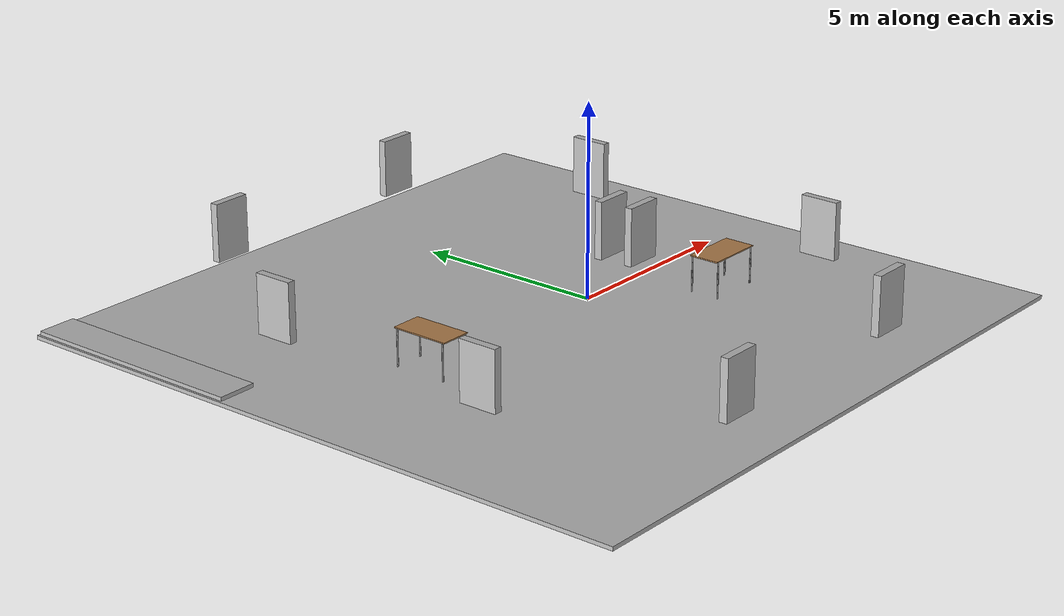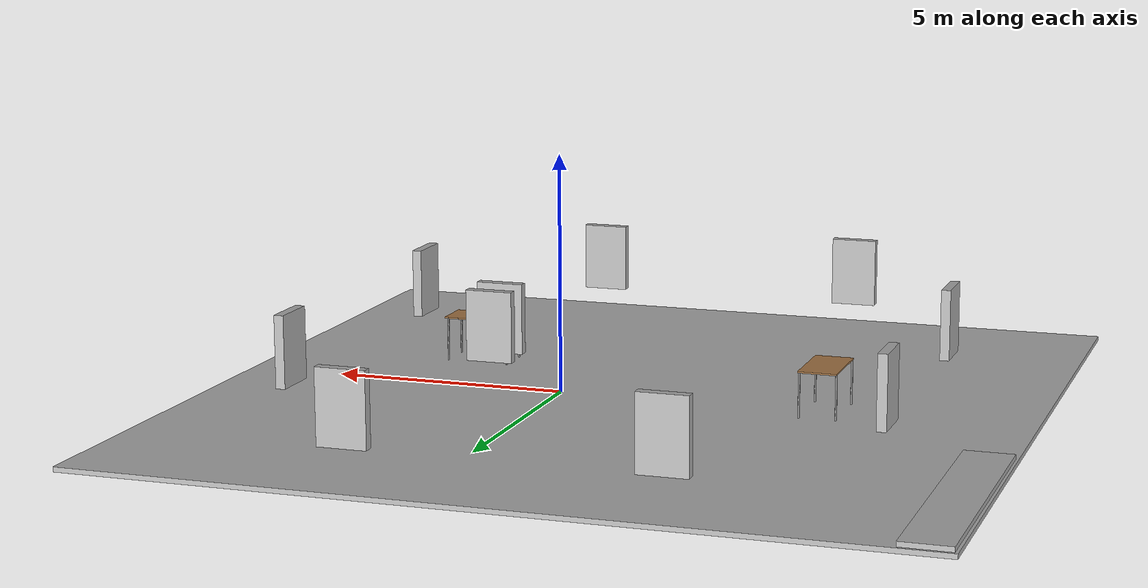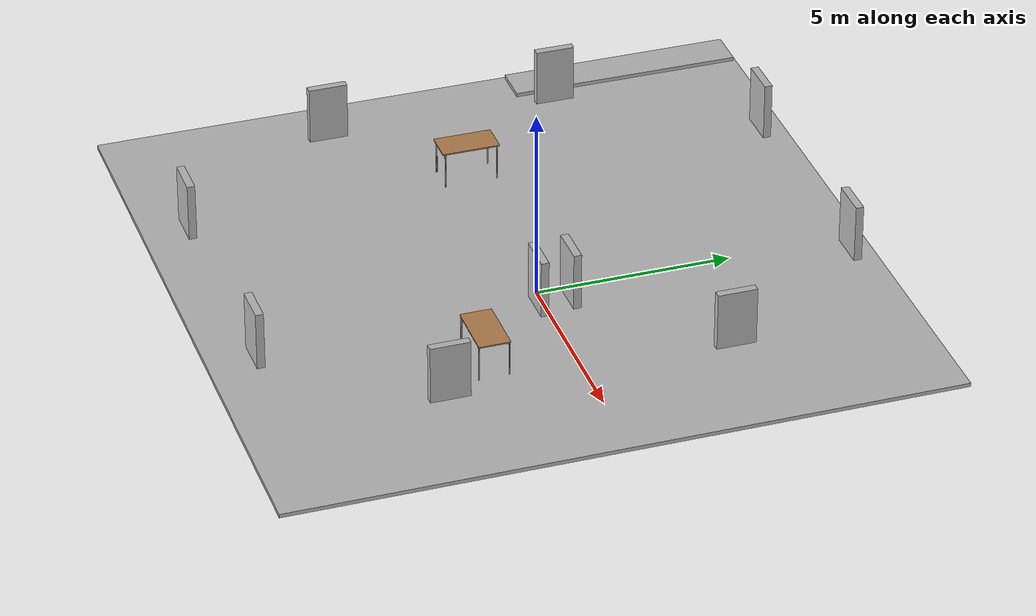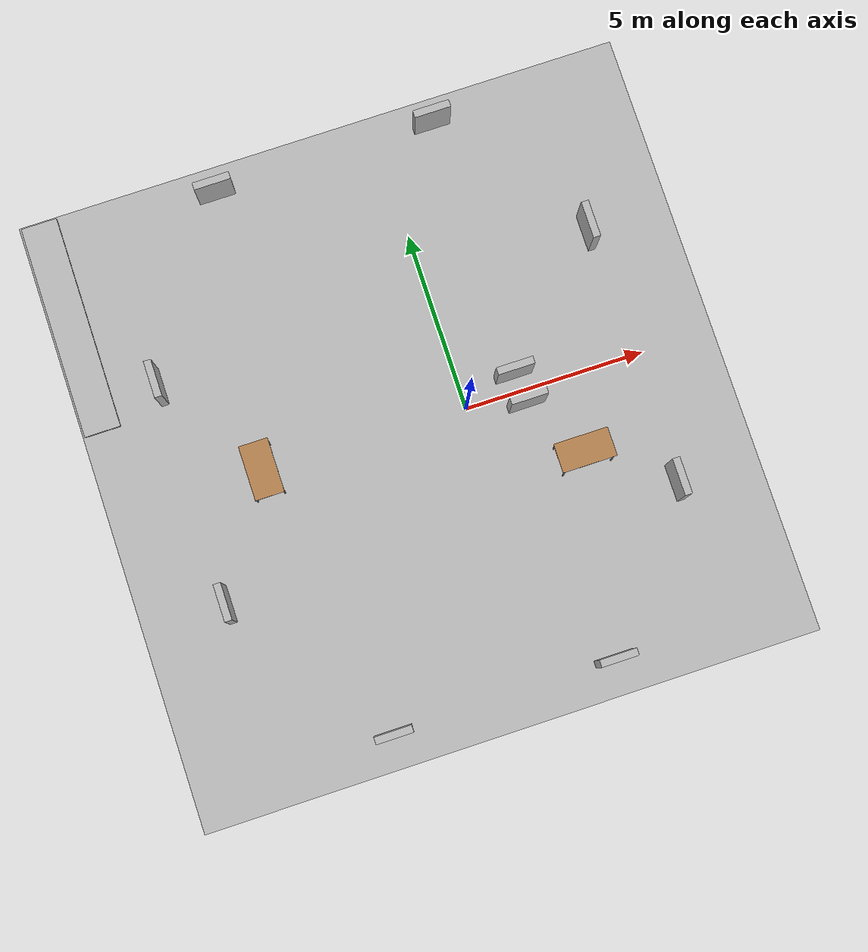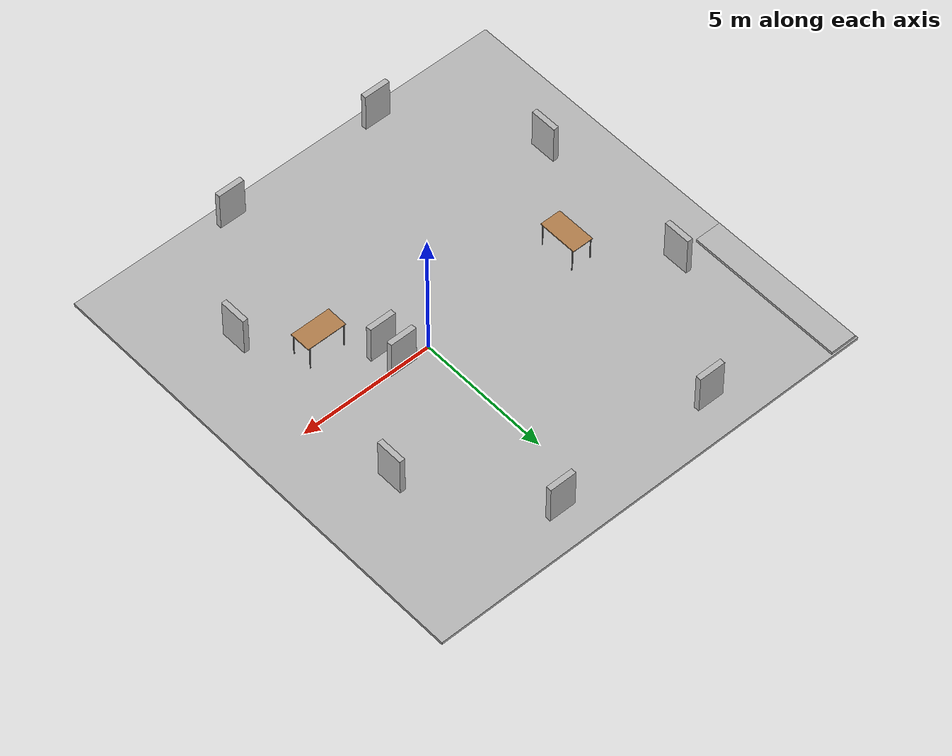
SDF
<sdf version="1.5">
 <world name="default">
  <light name="sun" type="directional">
   <pose>0 0 10 -0.1 -0.5 0</pose>
   <diffuse>0.8 0.8 0.8 1</diffuse>
   <specular>0.2 0.2 0.2 1</specular>
   <attenuation>
    <range>1000</range>
    <constant>0.9</constant>
    <linear>0.01</linear>
    <quadratic>0.001</quadratic>
   </attenuation>
   <direction>-0.5 0.1 -0.9</direction>
  </light>
  <plugin name="ros_interface_plugin" filename="librotors_gazebo_ros_interface_plugin.so"/>
  <spherical_coordinates>
   <surface_model>EARTH_WGS84</surface_model>
   <latitude_deg>47.3667</latitude_deg>
   <longitude_deg>8.55</longitude_deg>
   <elevation>500</elevation>
   <heading_deg>0</heading_deg>
  </spherical_coordinates>
  <physics name="default_physics" default="0" type="ode">
   <max_step_size>0.001</max_step_size>
   <real_time_factor>1</real_time_factor>
   <real_time_update_rate>1000</real_time_update_rate>
   <gravity>0 0 -9.8</gravity>
   <magnetic_field>5.5645e-06 2.28758e-05 -4.23884e-05</magnetic_field>
  </physics>
  <scene><ambient>0.4 0.4 0.4 1</ambient><background>0.7 0.7 0.7 1</background><shadows>1</shadows></scene>
  <model name="gallery_plane_0">
   <static>1</static>
   <link name="link">
    <collision name="collision"><geometry><box><size>17 17 0.1</size></box></geometry></collision>
    <visual name="visual">
     <cast_shadows>0</cast_shadows>
     <geometry><box><size>17 17 0.1</size></box></geometry>
     <material>
      <script>
       <uri>model://gallery_plane/materials/scripts</uri>
       <uri>model://gallery_plane/materials/textures</uri>
       <name>gallery/plane</name>
      </script>
     </material>
    </visual>
   </link>
   <pose>-1.5 0.002469 0 0 -0 0</pose>
  </model>
  <model name="painting_wall_3">
   <static>1</static>
   <link name="link">
    <pose>0 0 1.4 0 -0 0</pose>
    <collision name="collision"><geometry><box><size>1 0.2 1.5</size></box></geometry></collision>
    <visual name="visual">
     <cast_shadows>0</cast_shadows>
     <geometry><box><size>1 0.2 1.5</size></box></geometry>
     <material>
      <script>
       <uri>model://painting_wall/materials/scripts</uri>
       <uri>model://painting_wall/materials/textures</uri>
       <name>vrc/painting_wall4</name>
      </script>
     </material>
    </visual>
   </link>
   <pose>-4.5908 7.53296 0 0 -0 0</pose>
  </model>
  <model name="painting_wall_4">
   <static>1</static>
   <link name="link">
    <pose>0 0 1.4 0 -0 0</pose>
    <collision name="collision"><geometry><box><size>1 0.2 1.5</size></box></geometry></collision>
    <visual name="visual">
     <cast_shadows>0</cast_shadows>
     <geometry><box><size>1 0.2 1.5</size></box></geometry>
     <material>
      <script>
       <uri>model://painting_wall/materials/scripts</uri>
       <uri>model://painting_wall/materials/textures</uri>
       <name>vrc/painting_wall9</name>
      </script>
     </material>
    </visual>
   </link>
   <pose>1.5 7.58773 0 0 -0 0</pose>
  </model>
  <model name="painting_wall_6">
   <static>1</static>
   <link name="link">
    <pose>0 0 1.4 0 -0 0</pose>
    <collision name="collision"><geometry><box><size>1 0.2 1.5</size></box></geometry></collision>
    <visual name="visual">
     <cast_shadows>0</cast_shadows>
     <geometry><box><size>1 0.2 1.5</size></box></geometry>
     <material>
      <script>
       <uri>model://painting_wall/materials/scripts</uri>
       <uri>model://painting_wall/materials/textures</uri>
       <name>vrc/painting_wall8</name>
      </script>
     </material>
    </visual>
   </link>
   <pose>1.5 -7.5 0 0 -0 0</pose>
  </model>
  <model name="painting_wall_7">
   <static>1</static>
   <link name="link">
    <pose>0 0 1.4 0 -0 0</pose>
    <collision name="collision"><geometry><box><size>1 0.2 1.5</size></box></geometry></collision>
    <visual name="visual">
     <cast_shadows>0</cast_shadows>
     <geometry><box><size>1 0.2 1.5</size></box></geometry>
     <material>
      <script>
       <uri>model://painting_wall/materials/scripts</uri>
       <uri>model://painting_wall/materials/textures</uri>
       <name>vrc/painting_wall10</name>
      </script>
     </material>
    </visual>
   </link>
   <pose>-4.5 -7.55 0 0 -0 0</pose>
  </model>
  <model name="painting_wall_8">
   <static>1</static>
   <link name="link">
    <pose>0 0 1.4 0 -0 0</pose>
    <collision name="collision"><geometry><box><size>1 0.2 1.5</size></box></geometry></collision>
    <visual name="visual">
     <cast_shadows>0</cast_shadows>
     <geometry><box><size>1 0.2 1.5</size></box></geometry>
     <material>
      <script>
       <uri>model://painting_wall/materials/scripts</uri>
       <uri>model://painting_wall/materials/textures</uri>
       <name>vrc/painting_wall1</name>
      </script>
     </material>
    </visual>
   </link>
   <pose>-7.58928 -3.04662 0 0 -0 1.57</pose>
  </model>
  <model name="painting_wall_8_clone">
   <static>1</static>
   <link name="link">
    <pose>0 0 1.4 0 -0 0</pose>
    <collision name="collision"><geometry><box><size>1 0.2 1.5</size></box></geometry></collision>
    <visual name="visual">
     <cast_shadows>0</cast_shadows>
     <geometry><box><size>1 0.2 1.5</size></box></geometry>
     <material>
      <script>
       <uri>model://painting_wall/materials/scripts</uri>
       <uri>model://painting_wall/materials/textures</uri>
       <name>vrc/painting_wall2</name>
      </script>
     </material>
    </visual>
   </link>
   <pose>-7.58501 3 0 0 -0 1.57</pose>
  </model>
  <model name="painting_wall_8_clone_0">
   <static>1</static>
   <link name="link">
    <pose>0 0 1.4 0 -0 0</pose>
    <collision name="collision"><geometry><box><size>1 0.2 1.5</size></box></geometry></collision>
    <visual name="visual">
     <cast_shadows>0</cast_shadows>
     <geometry><box><size>1 0.2 1.5</size></box></geometry>
     <material>
      <script>
       <uri>model://painting_wall/materials/scripts</uri>
       <uri>model://painting_wall/materials/textures</uri>
       <name>vrc/painting_wall3</name>
      </script>
     </material>
    </visual>
   </link>
   <pose>4.54057 -3.65006 0 0 -0 1.57</pose>
  </model>
  <model name="painting_wall_8_clone_1">
   <static>1</static>
   <link name="link">
    <pose>0 0 1.4 0 -0 0</pose>
    <collision name="collision"><geometry><box><size>1 0.2 1.5</size></box></geometry></collision>
    <visual name="visual">
     <cast_shadows>0</cast_shadows>
     <geometry><box><size>1 0.2 1.5</size></box></geometry>
     <material>
      <script>
       <uri>model://painting_wall/materials/scripts</uri>
       <uri>model://painting_wall/materials/textures</uri>
       <name>vrc/painting_wall5</name>
      </script>
     </material>
    </visual>
   </link>
   <pose>4.51268 3.46474 0 0 -0 1.57</pose>
  </model>
  <model name="table">
   <static>1</static>
   <link name="link">
    <collision name="surface">
     <pose>0 0 1 0 -0 0</pose>
     <geometry><box><size>1.5 0.8 0.03</size></box></geometry>
     <surface><friction><ode><mu>0.6</mu><mu2>0.6</mu2></ode></friction></surface>
    </collision>
    <visual name="visual1">
     <pose>0 0 1 0 -0 0</pose>
     <geometry><box><size>1.5 0.8 0.03</size></box></geometry>
     <material>
      <script><uri>file://media/materials/scripts/gazebo.material</uri><name>Gazebo/Wood</name></script>
     </material>
    </visual>
    <collision name="front_left_leg">
     <pose>0.68 0.38 0.5 0 -0 0</pose>
     <geometry><cylinder><radius>0.02</radius><length>1</length></cylinder></geometry>
    </collision>
    <visual name="front_left_leg">
     <pose>0.68 0.38 0.5 0 -0 0</pose>
     <geometry><cylinder><radius>0.02</radius><length>1</length></cylinder></geometry>
     <material>
      <script><uri>file://media/materials/scripts/gazebo.material</uri><name>Gazebo/Grey</name></script>
     </material>
    </visual>
    <collision name="front_right_leg">
     <pose>0.68 -0.38 0.5 0 -0 0</pose>
     <geometry><cylinder><radius>0.02</radius><length>1</length></cylinder></geometry>
    </collision>
    <visual name="front_right_leg">
     <pose>0.68 -0.38 0.5 0 -0 0</pose>
     <geometry><cylinder><radius>0.02</radius><length>1</length></cylinder></geometry>
     <material>
      <script><uri>file://media/materials/scripts/gazebo.material</uri><name>Gazebo/Grey</name></script>
     </material>
    </visual>
    <collision name="back_right_leg">
     <pose>-0.68 -0.38 0.5 0 -0 0</pose>
     <geometry><cylinder><radius>0.02</radius><length>1</length></cylinder></geometry>
    </collision>
    <visual name="back_right_leg">
     <pose>-0.68 -0.38 0.5 0 -0 0</pose>
     <geometry><cylinder><radius>0.02</radius><length>1</length></cylinder></geometry>
     <material>
      <script><uri>file://media/materials/scripts/gazebo.material</uri><name>Gazebo/Grey</name></script>
     </material>
    </visual>
    <collision name="back_left_leg">
     <pose>-0.68 0.38 0.5 0 -0 0</pose>
     <geometry><cylinder><radius>0.02</radius><length>1</length></cylinder></geometry>
    </collision>
    <visual name="back_left_leg">
     <pose>-0.68 0.38 0.5 0 -0 0</pose>
     <geometry><cylinder><radius>0.02</radius><length>1</length></cylinder></geometry>
     <material>
      <script><uri>file://media/materials/scripts/gazebo.material</uri><name>Gazebo/Grey</name></script>
     </material>
    </visual>
   </link>
   <pose>2.54786 -2.12998 0 0 -0 0</pose>
  </model>
  <model name="table_clone">
   <static>1</static>
   <link name="link">
    <collision name="surface">
     <pose>0 0 1 0 -0 0</pose>
     <geometry><box><size>1.5 0.8 0.03</size></box></geometry>
     <surface><friction><ode><mu>0.6</mu><mu2>0.6</mu2></ode></friction></surface>
    </collision>
    <visual name="visual1">
     <pose>0 0 1 0 -0 0</pose>
     <geometry><box><size>1.5 0.8 0.03</size></box></geometry>
     <material>
      <script><uri>file://media/materials/scripts/gazebo.material</uri><name>Gazebo/Wood</name></script>
     </material>
    </visual>
    <collision name="front_left_leg">
     <pose>0.68 0.38 0.5 0 -0 0</pose>
     <geometry><cylinder><radius>0.02</radius><length>1</length></cylinder></geometry>
    </collision>
    <visual name="front_left_leg">
     <pose>0.68 0.38 0.5 0 -0 0</pose>
     <geometry><cylinder><radius>0.02</radius><length>1</length></cylinder></geometry>
     <material>
      <script><uri>file://media/materials/scripts/gazebo.material</uri><name>Gazebo/Grey</name></script>
     </material>
    </visual>
    <collision name="front_right_leg">
     <pose>0.68 -0.38 0.5 0 -0 0</pose>
     <geometry><cylinder><radius>0.02</radius><length>1</length></cylinder></geometry>
    </collision>
    <visual name="front_right_leg">
     <pose>0.68 -0.38 0.5 0 -0 0</pose>
     <geometry><cylinder><radius>0.02</radius><length>1</length></cylinder></geometry>
     <material>
      <script><uri>file://media/materials/scripts/gazebo.material</uri><name>Gazebo/Grey</name></script>
     </material>
    </visual>
    <collision name="back_right_leg">
     <pose>-0.68 -0.38 0.5 0 -0 0</pose>
     <geometry><cylinder><radius>0.02</radius><length>1</length></cylinder></geometry>
    </collision>
    <visual name="back_right_leg">
     <pose>-0.68 -0.38 0.5 0 -0 0</pose>
     <geometry><cylinder><radius>0.02</radius><length>1</length></cylinder></geometry>
     <material>
      <script><uri>file://media/materials/scripts/gazebo.material</uri><name>Gazebo/Grey</name></script>
     </material>
    </visual>
    <collision name="back_left_leg">
     <pose>-0.68 0.38 0.5 0 -0 0</pose>
     <geometry><cylinder><radius>0.02</radius><length>1</length></cylinder></geometry>
    </collision>
    <visual name="back_left_leg">
     <pose>-0.68 0.38 0.5 0 -0 0</pose>
     <geometry><cylinder><radius>0.02</radius><length>1</length></cylinder></geometry>
     <material>
      <script><uri>file://media/materials/scripts/gazebo.material</uri><name>Gazebo/Grey</name></script>
     </material>
    </visual>
   </link>
   <pose>-5.67908 0.038215 0 0 -0 1.57</pose>
  </model>
  <model name="logo_wall">
   <static>1</static>
   <link name="link">
    <collision name="collision"><geometry><box><size>6 0.1 1</size></box></geometry></collision>
    <visual name="visual">
     <cast_shadows>0</cast_shadows>
     <geometry><box><size>6 0.1 1</size></box></geometry>
     <material>
      <script>
       <uri>model://logo_wall/materials/scripts</uri>
       <uri>model://logo_wall/materials/textures</uri>
       <name>vrc/logo_wall</name>
      </script>
     </material>
    </visual>
   </link>
   <pose>-9.44208 5.44576 0.1 1.57 -5.55112e-17 1.57</pose>
  </model>
  <model name="painting_wall_6_clone">
   <static>1</static>
   <link name="link">
    <pose>0 0 1.4 0 -0 0</pose>
    <collision name="collision"><geometry><box><size>1 0.2 1.5</size></box></geometry></collision>
    <visual name="visual">
     <cast_shadows>0</cast_shadows>
     <geometry><box><size>1 0.2 1.5</size></box></geometry>
     <material>
      <script>
       <uri>model://painting_wall/materials/scripts</uri>
       <uri>model://painting_wall/materials/textures</uri>
       <name>vrc/painting_wall6</name>
      </script>
     </material>
    </visual>
   </link>
   <pose>1.4065 0.401396 0 0 -0 0</pose>
  </model>
  <model name="painting_wall_4_clone">
   <static>1</static>
   <link name="link">
    <pose>0 0 1.4 0 -0 0</pose>
    <collision name="collision"><geometry><box><size>1 0.2 1.5</size></box></geometry></collision>
    <visual name="visual">
     <cast_shadows>0</cast_shadows>
     <geometry><box><size>1 0.2 1.5</size></box></geometry>
     <material>
      <script>
       <uri>model://painting_wall/materials/scripts</uri>
       <uri>model://painting_wall/materials/textures</uri>
       <name>vrc/painting_wall7</name>
      </script>
     </material>
    </visual>
   </link>
   <pose>1.48812 -0.446387 0 0 -0 0</pose>
  </model>
 </world>
</sdf>
